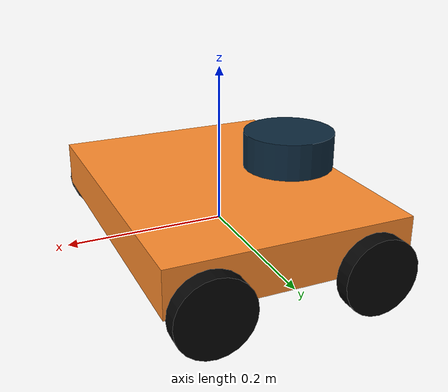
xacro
<?xml version="1.0"?>
<robot xmlns:xacro="http://www.ros.org/wiki/xacro" name="pi5_amr">
  <xacro:property name="cm" value="0.01"/>

  <xacro:property name="base_length_cm" value="30.0"/>
  <xacro:property name="base_width_cm" value="40.0"/>
  <xacro:property name="base_height_cm" value="5.8"/>
  <xacro:property name="base_ground_clearance_cm" value="0.0"/>

  <xacro:property name="lidar_radius_cm" value="6.0"/>
  <xacro:property name="lidar_height_cm" value="5.0"/>
  <xacro:property name="lidar_x_cm" value="-10.0"/>
  <xacro:property name="lidar_y_cm" value="0.0"/>
  <xacro:property name="lidar_z_cm" value="8.1"/>

  <xacro:property name="wheel_radius_cm" value="4.75"/>
  <xacro:property name="wheel_thickness_cm" value="2.0"/>
  <xacro:property name="wheel_x_offset_cm" value="10.0"/>
  <xacro:property name="wheel_y_offset_cm" value="21.0"/>
  <xacro:property name="wheel_z_cm" value="0.0"/>

  <material name="orange_body">
    <color rgba="1.0 0.55 0.18 1.0"/>
  </material>
  <material name="black_rubber">
    <color rgba="0.02 0.02 0.02 1.0"/>
  </material>
  <material name="lidar_dark">
    <color rgba="0.05 0.16 0.24 1.0"/>
  </material>

  <link name="base_link">
    <visual>
      <origin xyz="0 0 ${(base_ground_clearance_cm + (base_height_cm / 2.0)) * cm}" rpy="0 0 0"/>
      <geometry>
        <box size="${base_length_cm * cm} ${base_width_cm * cm} ${base_height_cm * cm}"/>
      </geometry>
      <material name="orange_body"/>
    </visual>
    <collision>
      <origin xyz="0 0 ${(base_ground_clearance_cm + (base_height_cm / 2.0)) * cm}" rpy="0 0 0"/>
      <geometry>
        <box size="${base_length_cm * cm} ${base_width_cm * cm} ${base_height_cm * cm}"/>
      </geometry>
    </collision>
  </link>

  <link name="laser">
    <visual>
      <origin xyz="0 0 0" rpy="0 0 0"/>
      <geometry>
        <cylinder radius="${lidar_radius_cm * cm}" length="${lidar_height_cm * cm}"/>
      </geometry>
      <material name="lidar_dark"/>
    </visual>
  </link>

  <joint name="base_to_laser" type="fixed">
    <parent link="base_link"/>
    <child link="laser"/>
    <origin xyz="${lidar_x_cm * cm} ${lidar_y_cm * cm} ${lidar_z_cm * cm}" rpy="0 0 0"/>
  </joint>

  <link name="wheel_front_left">
    <visual>
      <origin xyz="0 0 0" rpy="1.57079632679 0 0"/>
      <geometry>
        <cylinder radius="${wheel_radius_cm * cm}" length="${wheel_thickness_cm * cm}"/>
      </geometry>
      <material name="black_rubber"/>
    </visual>
  </link>

  <joint name="base_to_wheel_front_left" type="fixed">
    <parent link="base_link"/>
    <child link="wheel_front_left"/>
    <origin xyz="${wheel_x_offset_cm * cm} ${wheel_y_offset_cm * cm} ${wheel_z_cm * cm}" rpy="0 0 0"/>
  </joint>

  <link name="wheel_front_right">
    <visual>
      <origin xyz="0 0 0" rpy="1.57079632679 0 0"/>
      <geometry>
        <cylinder radius="${wheel_radius_cm * cm}" length="${wheel_thickness_cm * cm}"/>
      </geometry>
      <material name="black_rubber"/>
    </visual>
  </link>

  <joint name="base_to_wheel_front_right" type="fixed">
    <parent link="base_link"/>
    <child link="wheel_front_right"/>
    <origin xyz="${wheel_x_offset_cm * cm} ${-wheel_y_offset_cm * cm} ${wheel_z_cm * cm}" rpy="0 0 0"/>
  </joint>

  <link name="wheel_rear_left">
    <visual>
      <origin xyz="0 0 0" rpy="1.57079632679 0 0"/>
      <geometry>
        <cylinder radius="${wheel_radius_cm * cm}" length="${wheel_thickness_cm * cm}"/>
      </geometry>
      <material name="black_rubber"/>
    </visual>
  </link>

  <joint name="base_to_wheel_rear_left" type="fixed">
    <parent link="base_link"/>
    <child link="wheel_rear_left"/>
    <origin xyz="${-wheel_x_offset_cm * cm} ${wheel_y_offset_cm * cm} ${wheel_z_cm * cm}" rpy="0 0 0"/>
  </joint>

  <link name="wheel_rear_right">
    <visual>
      <origin xyz="0 0 0" rpy="1.57079632679 0 0"/>
      <geometry>
        <cylinder radius="${wheel_radius_cm * cm}" length="${wheel_thickness_cm * cm}"/>
      </geometry>
      <material name="black_rubber"/>
    </visual>
  </link>

  <joint name="base_to_wheel_rear_right" type="fixed">
    <parent link="base_link"/>
    <child link="wheel_rear_right"/>
    <origin xyz="${-wheel_x_offset_cm * cm} ${-wheel_y_offset_cm * cm} ${wheel_z_cm * cm}" rpy="0 0 0"/>
  </joint>
</robot>
